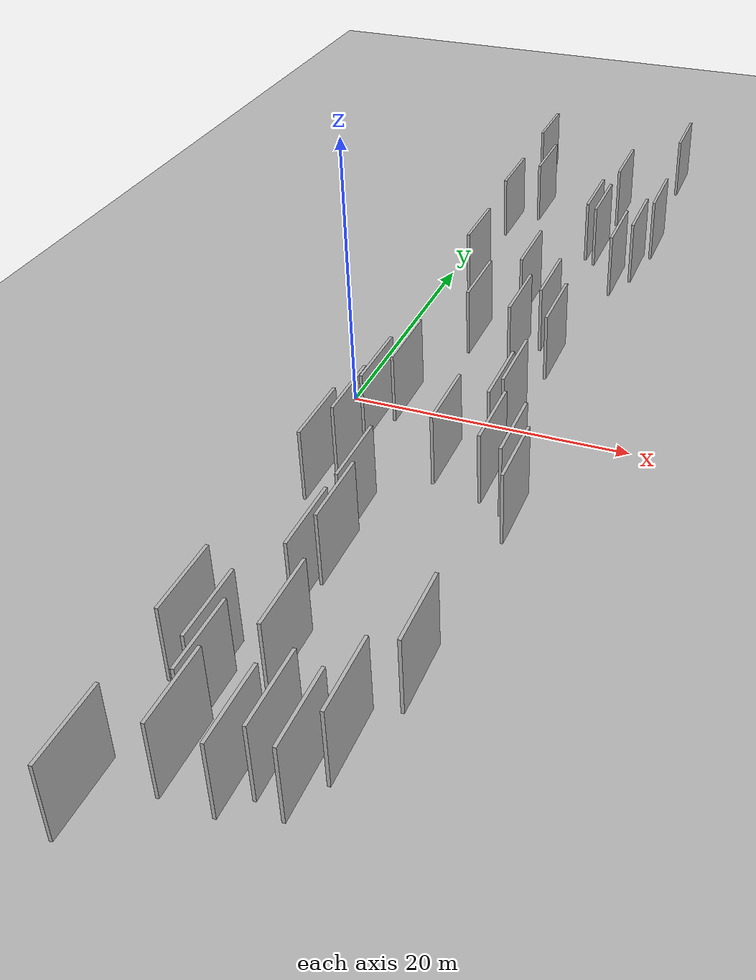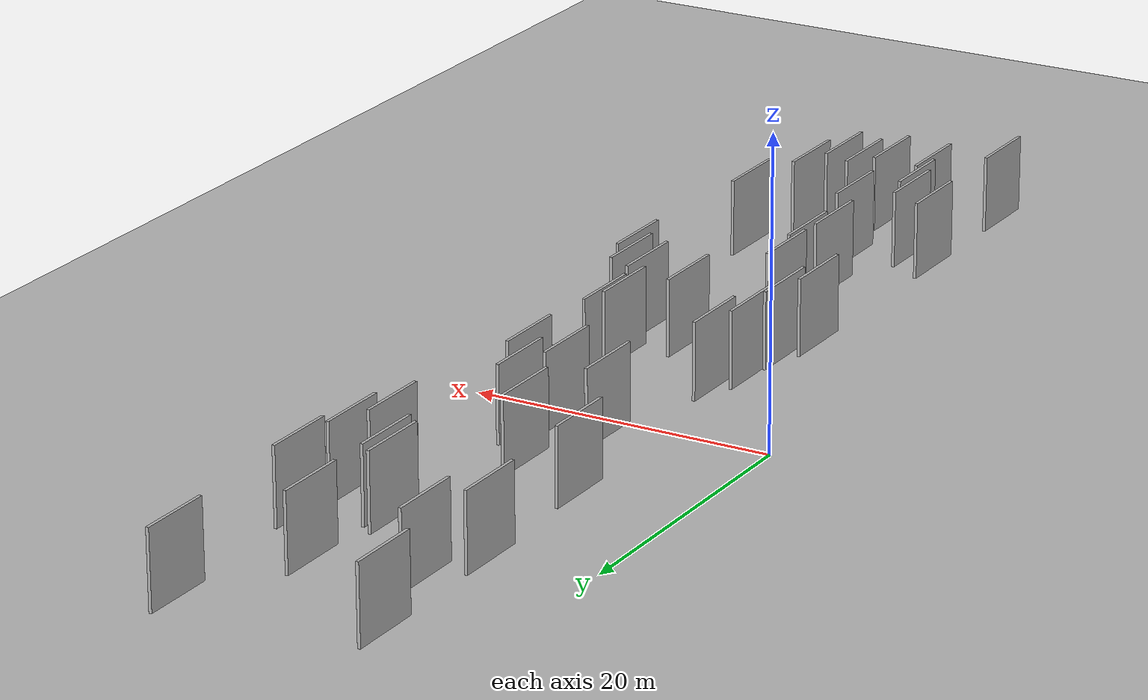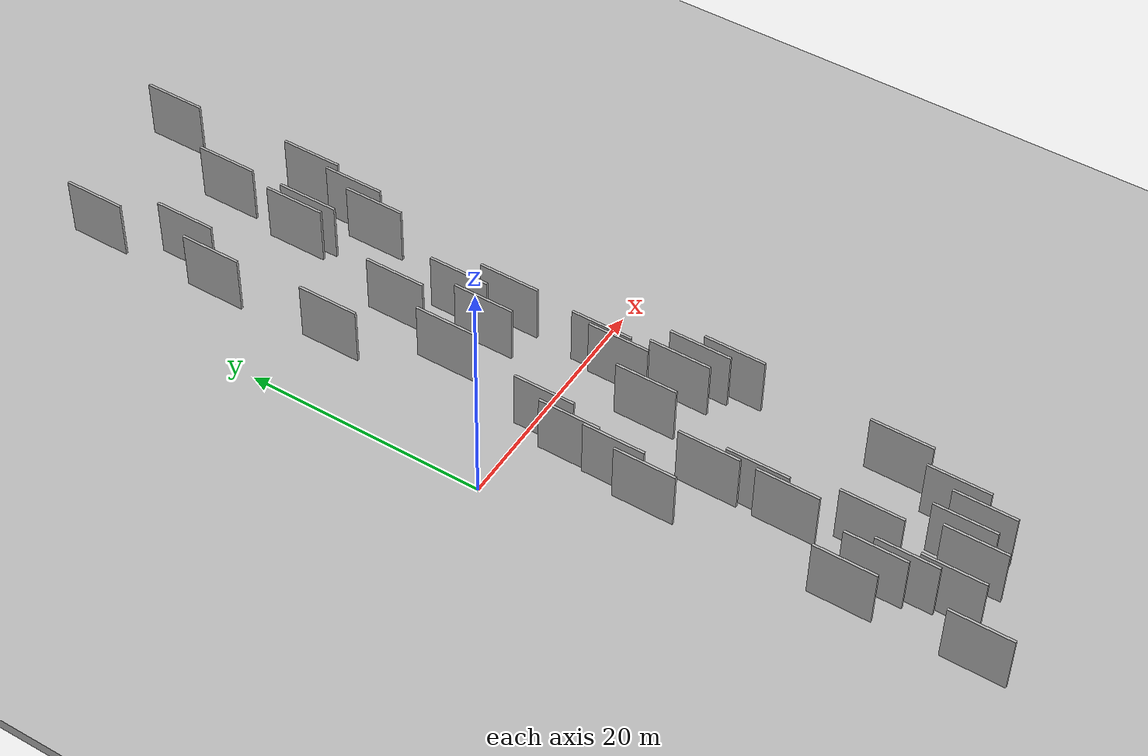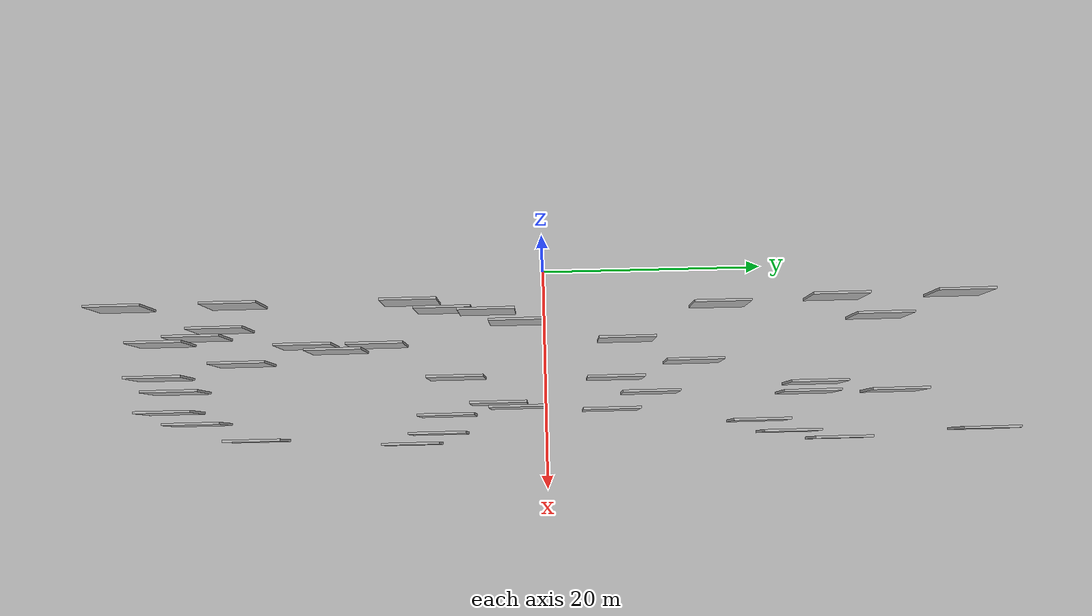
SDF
<?xml version="1.0" encoding="utf-8"?>

<sdf version="1.6">

   <world name="default">

      <gui fullscreen="0">

         <camera name="user_camera">

            <pose>-15 0 4.57585 0 0 0</pose>

            <view_controller>orbit</view_controller>

         </camera>

      </gui>

      <scene>

         <sky>

           <clouds>

             <speed>12</speed>

           </clouds>

         </sky>

         <ambient>0.4 0.4 0.4 1</ambient>

         <background>0.7 0.7 0.7 1</background>

         <shadows>1</shadows>

      </scene>

      <gravity>0 0 -9.8066</gravity>

      <magnetic_field>6e-06 2.3e-05 -4.2e-05</magnetic_field>

      <physics default="0" name="default_physics" type="ode">

         <ode>

            <solver>

               <type>quick</type>

               <iters>10</iters>

               <sor>1.0</sor>

               <use_dynamic_moi_rescaling>0</use_dynamic_moi_rescaling>

            </solver>

            <constraints>

               <cfm>0</cfm>

               <erp>0.2</erp>

               <contact_max_correcting_vel>100</contact_max_correcting_vel>

               <contact_surface_layer>0.001</contact_surface_layer>

            </constraints>

         </ode>

         <max_step_size>0.004</max_step_size>

         <real_time_factor>1</real_time_factor>

         <real_time_update_rate>250</real_time_update_rate>

      </physics>

      <light name="sun" type="directional">

         <cast_shadows>1</cast_shadows>

         <pose>0 0 10 0 0 0</pose>

         <diffuse>0.8 0.8 0.8 1</diffuse>

         <specular>0.2 0.2 0.2 1</specular>

         <attenuation>

            <range>1000</range>

            <constant>0.9</constant>

            <linear>0.01</linear>

            <quadratic>0.001</quadratic>

         </attenuation>

         <direction>-0.5 0.1 -0.9</direction>

      </light>

      <include>

         <name>ground_plane_1</name>

         <uri>model://HANNAS_ground_plane</uri>

         <pose>0 0 0  0 0 0</pose>

      </include>

      <include>

         <name>ground_plane_2</name>

         <uri>model://HANNAS_ground_plane</uri>

         <pose>100 0 0  0 0 0</pose>

      </include>

      <model name="HANNAS_wall_1">

         <static>1</static>

         <pose frame="">4.0611 -5.0417 2.5 0.000000 0.000000 1.570796</pose>

         <link name="link">

            <pose frame="">0 0 2.50 0 0 0</pose>

            <collision name="collision">

               <geometry>

                  <box>

                     <size>5.00 0.2 5.00</size>

                  </box>

               </geometry>

               <max_contacts>10</max_contacts>

               <surface>

                  <contact>

                     <ode/>

                  </contact>

                  <bounce/>

                  <friction>

                     <torsional>

                        <ode/>

                     </torsional>

                     <ode/>

                  </friction>

               </surface>

            </collision>

            <visual name="visual">

               <cast_shadows>0</cast_shadows>

               <geometry>

                  <box>

                     <size>5.00 0.2 5.00</size>

                  </box>

               </geometry>

               <material>

                  <script>

                     <uri>model://HANNAS_wall/materials/scripts</uri>

                     <uri>model://HANNAS_wall/materials/textures</uri>

                     <name>vrc/HANNAS_wall</name>

                  </script>

               </material>

            </visual>

            <self_collide>0</self_collide>

            <enable_wind>0</enable_wind>

            <kinematic>0</kinematic>

         </link>

      </model>

      <model name="HANNAS_wall_2">

         <static>1</static>

         <pose frame="">6.8027 -21.0316 2.5 0.000000 0.000000 1.570796</pose>

         <link name="link">

            <pose frame="">0 0 2.50 0 0 0</pose>

            <collision name="collision">

               <geometry>

                  <box>

                     <size>5.00 0.2 5.00</size>

                  </box>

               </geometry>

               <max_contacts>10</max_contacts>

               <surface>

                  <contact>

                     <ode/>

                  </contact>

                  <bounce/>

                  <friction>

                     <torsional>

                        <ode/>

                     </torsional>

                     <ode/>

                  </friction>

               </surface>

            </collision>

            <visual name="visual">

               <cast_shadows>0</cast_shadows>

               <geometry>

                  <box>

                     <size>5.00 0.2 5.00</size>

                  </box>

               </geometry>

               <material>

                  <script>

                     <uri>model://HANNAS_wall/materials/scripts</uri>

                     <uri>model://HANNAS_wall/materials/textures</uri>

                     <name>vrc/HANNAS_wall</name>

                  </script>

               </material>

            </visual>

            <self_collide>0</self_collide>

            <enable_wind>0</enable_wind>

            <kinematic>0</kinematic>

         </link>

      </model>

      <model name="HANNAS_wall_3">

         <static>1</static>

         <pose frame="">5.0517 -2.3340 2.5 0.000000 0.000000 1.570796</pose>

         <link name="link">

            <pose frame="">0 0 2.50 0 0 0</pose>

            <collision name="collision">

               <geometry>

                  <box>

                     <size>5.00 0.2 5.00</size>

                  </box>

               </geometry>

               <max_contacts>10</max_contacts>

               <surface>

                  <contact>

                     <ode/>

                  </contact>

                  <bounce/>

                  <friction>

                     <torsional>

                        <ode/>

                     </torsional>

                     <ode/>

                  </friction>

               </surface>

            </collision>

            <visual name="visual">

               <cast_shadows>0</cast_shadows>

               <geometry>

                  <box>

                     <size>5.00 0.2 5.00</size>

                  </box>

               </geometry>

               <material>

                  <script>

                     <uri>model://HANNAS_wall/materials/scripts</uri>

                     <uri>model://HANNAS_wall/materials/textures</uri>

                     <name>vrc/HANNAS_wall</name>

                  </script>

               </material>

            </visual>

            <self_collide>0</self_collide>

            <enable_wind>0</enable_wind>

            <kinematic>0</kinematic>

         </link>

      </model>

      <model name="HANNAS_wall_4">

         <static>1</static>

         <pose frame="">13.2002 -8.6880 2.5 0.000000 0.000000 1.570796</pose>

         <link name="link">

            <pose frame="">0 0 2.50 0 0 0</pose>

            <collision name="collision">

               <geometry>

                  <box>

                     <size>5.00 0.2 5.00</size>

                  </box>

               </geometry>

               <max_contacts>10</max_contacts>

               <surface>

                  <contact>

                     <ode/>

                  </contact>

                  <bounce/>

                  <friction>

                     <torsional>

                        <ode/>

                     </torsional>

                     <ode/>

                  </friction>

               </surface>

            </collision>

            <visual name="visual">

               <cast_shadows>0</cast_shadows>

               <geometry>

                  <box>

                     <size>5.00 0.2 5.00</size>

                  </box>

               </geometry>

               <material>

                  <script>

                     <uri>model://HANNAS_wall/materials/scripts</uri>

                     <uri>model://HANNAS_wall/materials/textures</uri>

                     <name>vrc/HANNAS_wall</name>

                  </script>

               </material>

            </visual>

            <self_collide>0</self_collide>

            <enable_wind>0</enable_wind>

            <kinematic>0</kinematic>

         </link>

      </model>

      <model name="HANNAS_wall_5">

         <static>1</static>

         <pose frame="">5.1842 -28.6726 2.5 0.000000 0.000000 1.570796</pose>

         <link name="link">

            <pose frame="">0 0 2.50 0 0 0</pose>

            <collision name="collision">

               <geometry>

                  <box>

                     <size>5.00 0.2 5.00</size>

                  </box>

               </geometry>

               <max_contacts>10</max_contacts>

               <surface>

                  <contact>

                     <ode/>

                  </contact>

                  <bounce/>

                  <friction>

                     <torsional>

                        <ode/>

                     </torsional>

                     <ode/>

                  </friction>

               </surface>

            </collision>

            <visual name="visual">

               <cast_shadows>0</cast_shadows>

               <geometry>

                  <box>

                     <size>5.00 0.2 5.00</size>

                  </box>

               </geometry>

               <material>

                  <script>

                     <uri>model://HANNAS_wall/materials/scripts</uri>

                     <uri>model://HANNAS_wall/materials/textures</uri>

                     <name>vrc/HANNAS_wall</name>

                  </script>

               </material>

            </visual>

            <self_collide>0</self_collide>

            <enable_wind>0</enable_wind>

            <kinematic>0</kinematic>

         </link>

      </model>

      <model name="HANNAS_wall_6">

         <static>1</static>

         <pose frame="">15.6632 -11.8066 2.5 0.000000 0.000000 1.570796</pose>

         <link name="link">

            <pose frame="">0 0 2.50 0 0 0</pose>

            <collision name="collision">

               <geometry>

                  <box>

                     <size>5.00 0.2 5.00</size>

                  </box>

               </geometry>

               <max_contacts>10</max_contacts>

               <surface>

                  <contact>

                     <ode/>

                  </contact>

                  <bounce/>

                  <friction>

                     <torsional>

                        <ode/>

                     </torsional>

                     <ode/>

                  </friction>

               </surface>

            </collision>

            <visual name="visual">

               <cast_shadows>0</cast_shadows>

               <geometry>

                  <box>

                     <size>5.00 0.2 5.00</size>

                  </box>

               </geometry>

               <material>

                  <script>

                     <uri>model://HANNAS_wall/materials/scripts</uri>

                     <uri>model://HANNAS_wall/materials/textures</uri>

                     <name>vrc/HANNAS_wall</name>

                  </script>

               </material>

            </visual>

            <self_collide>0</self_collide>

            <enable_wind>0</enable_wind>

            <kinematic>0</kinematic>

         </link>

      </model>

      <model name="HANNAS_wall_7">

         <static>1</static>

         <pose frame="">5.2325 29.7502 2.5 0.000000 0.000000 1.570796</pose>

         <link name="link">

            <pose frame="">0 0 2.50 0 0 0</pose>

            <collision name="collision">

               <geometry>

                  <box>

                     <size>5.00 0.2 5.00</size>

                  </box>

               </geometry>

               <max_contacts>10</max_contacts>

               <surface>

                  <contact>

                     <ode/>

                  </contact>

                  <bounce/>

                  <friction>

                     <torsional>

                        <ode/>

                     </torsional>

                     <ode/>

                  </friction>

               </surface>

            </collision>

            <visual name="visual">

               <cast_shadows>0</cast_shadows>

               <geometry>

                  <box>

                     <size>5.00 0.2 5.00</size>

                  </box>

               </geometry>

               <material>

                  <script>

                     <uri>model://HANNAS_wall/materials/scripts</uri>

                     <uri>model://HANNAS_wall/materials/textures</uri>

                     <name>vrc/HANNAS_wall</name>

                  </script>

               </material>

            </visual>

            <self_collide>0</self_collide>

            <enable_wind>0</enable_wind>

            <kinematic>0</kinematic>

         </link>

      </model>

      <model name="HANNAS_wall_8">

         <static>1</static>

         <pose frame="">14.2520 18.7324 2.5 0.000000 0.000000 1.570796</pose>

         <link name="link">

            <pose frame="">0 0 2.50 0 0 0</pose>

            <collision name="collision">

               <geometry>

                  <box>

                     <size>5.00 0.2 5.00</size>

                  </box>

               </geometry>

               <max_contacts>10</max_contacts>

               <surface>

                  <contact>

                     <ode/>

                  </contact>

                  <bounce/>

                  <friction>

                     <torsional>

                        <ode/>

                     </torsional>

                     <ode/>

                  </friction>

               </surface>

            </collision>

            <visual name="visual">

               <cast_shadows>0</cast_shadows>

               <geometry>

                  <box>

                     <size>5.00 0.2 5.00</size>

                  </box>

               </geometry>

               <material>

                  <script>

                     <uri>model://HANNAS_wall/materials/scripts</uri>

                     <uri>model://HANNAS_wall/materials/textures</uri>

                     <name>vrc/HANNAS_wall</name>

                  </script>

               </material>

            </visual>

            <self_collide>0</self_collide>

            <enable_wind>0</enable_wind>

            <kinematic>0</kinematic>

         </link>

      </model>

      <model name="HANNAS_wall_9">

         <static>1</static>

         <pose frame="">9.8904 -7.8526 2.5 0.000000 0.000000 1.570796</pose>

         <link name="link">

            <pose frame="">0 0 2.50 0 0 0</pose>

            <collision name="collision">

               <geometry>

                  <box>

                     <size>5.00 0.2 5.00</size>

                  </box>

               </geometry>

               <max_contacts>10</max_contacts>

               <surface>

                  <contact>

                     <ode/>

                  </contact>

                  <bounce/>

                  <friction>

                     <torsional>

                        <ode/>

                     </torsional>

                     <ode/>

                  </friction>

               </surface>

            </collision>

            <visual name="visual">

               <cast_shadows>0</cast_shadows>

               <geometry>

                  <box>

                     <size>5.00 0.2 5.00</size>

                  </box>

               </geometry>

               <material>

                  <script>

                     <uri>model://HANNAS_wall/materials/scripts</uri>

                     <uri>model://HANNAS_wall/materials/textures</uri>

                     <name>vrc/HANNAS_wall</name>

                  </script>

               </material>

            </visual>

            <self_collide>0</self_collide>

            <enable_wind>0</enable_wind>

            <kinematic>0</kinematic>

         </link>

      </model>

      <model name="HANNAS_wall_10">

         <static>1</static>

         <pose frame="">15.0764 -25.5331 2.5 0.000000 0.000000 1.570796</pose>

         <link name="link">

            <pose frame="">0 0 2.50 0 0 0</pose>

            <collision name="collision">

               <geometry>

                  <box>

                     <size>5.00 0.2 5.00</size>

                  </box>

               </geometry>

               <max_contacts>10</max_contacts>

               <surface>

                  <contact>

                     <ode/>

                  </contact>

                  <bounce/>

                  <friction>

                     <torsional>

                        <ode/>

                     </torsional>

                     <ode/>

                  </friction>

               </surface>

            </collision>

            <visual name="visual">

               <cast_shadows>0</cast_shadows>

               <geometry>

                  <box>

                     <size>5.00 0.2 5.00</size>

                  </box>

               </geometry>

               <material>

                  <script>

                     <uri>model://HANNAS_wall/materials/scripts</uri>

                     <uri>model://HANNAS_wall/materials/textures</uri>

                     <name>vrc/HANNAS_wall</name>

                  </script>

               </material>

            </visual>

            <self_collide>0</self_collide>

            <enable_wind>0</enable_wind>

            <kinematic>0</kinematic>

         </link>

      </model>

      <model name="HANNAS_wall_11">

         <static>1</static>

         <pose frame="">15.9579 25.7629 2.5 0.000000 0.000000 1.570796</pose>

         <link name="link">

            <pose frame="">0 0 2.50 0 0 0</pose>

            <collision name="collision">

               <geometry>

                  <box>

                     <size>5.00 0.2 5.00</size>

                  </box>

               </geometry>

               <max_contacts>10</max_contacts>

               <surface>

                  <contact>

                     <ode/>

                  </contact>

                  <bounce/>

                  <friction>

                     <torsional>

                        <ode/>

                     </torsional>

                     <ode/>

                  </friction>

               </surface>

            </collision>

            <visual name="visual">

               <cast_shadows>0</cast_shadows>

               <geometry>

                  <box>

                     <size>5.00 0.2 5.00</size>

                  </box>

               </geometry>

               <material>

                  <script>

                     <uri>model://HANNAS_wall/materials/scripts</uri>

                     <uri>model://HANNAS_wall/materials/textures</uri>

                     <name>vrc/HANNAS_wall</name>

                  </script>

               </material>

            </visual>

            <self_collide>0</self_collide>

            <enable_wind>0</enable_wind>

            <kinematic>0</kinematic>

         </link>

      </model>

      <model name="HANNAS_wall_12">

         <static>1</static>

         <pose frame="">12.6121 -2.4671 2.5 0.000000 0.000000 1.570796</pose>

         <link name="link">

            <pose frame="">0 0 2.50 0 0 0</pose>

            <collision name="collision">

               <geometry>

                  <box>

                     <size>5.00 0.2 5.00</size>

                  </box>

               </geometry>

               <max_contacts>10</max_contacts>

               <surface>

                  <contact>

                     <ode/>

                  </contact>

                  <bounce/>

                  <friction>

                     <torsional>

                        <ode/>

                     </torsional>

                     <ode/>

                  </friction>

               </surface>

            </collision>

            <visual name="visual">

               <cast_shadows>0</cast_shadows>

               <geometry>

                  <box>

                     <size>5.00 0.2 5.00</size>

                  </box>

               </geometry>

               <material>

                  <script>

                     <uri>model://HANNAS_wall/materials/scripts</uri>

                     <uri>model://HANNAS_wall/materials/textures</uri>

                     <name>vrc/HANNAS_wall</name>

                  </script>

               </material>

            </visual>

            <self_collide>0</self_collide>

            <enable_wind>0</enable_wind>

            <kinematic>0</kinematic>

         </link>

      </model>

      <model name="HANNAS_wall_13">

         <static>1</static>

         <pose frame="">15.4311 38.5887 2.5 0.000000 0.000000 1.570796</pose>

         <link name="link">

            <pose frame="">0 0 2.50 0 0 0</pose>

            <collision name="collision">

               <geometry>

                  <box>

                     <size>5.00 0.2 5.00</size>

                  </box>

               </geometry>

               <max_contacts>10</max_contacts>

               <surface>

                  <contact>

                     <ode/>

                  </contact>

                  <bounce/>

                  <friction>

                     <torsional>

                        <ode/>

                     </torsional>

                     <ode/>

                  </friction>

               </surface>

            </collision>

            <visual name="visual">

               <cast_shadows>0</cast_shadows>

               <geometry>

                  <box>

                     <size>5.00 0.2 5.00</size>

                  </box>

               </geometry>

               <material>

                  <script>

                     <uri>model://HANNAS_wall/materials/scripts</uri>

                     <uri>model://HANNAS_wall/materials/textures</uri>

                     <name>vrc/HANNAS_wall</name>

                  </script>

               </material>

            </visual>

            <self_collide>0</self_collide>

            <enable_wind>0</enable_wind>

            <kinematic>0</kinematic>

         </link>

      </model>

      <model name="HANNAS_wall_14">

         <static>1</static>

         <pose frame="">3.4527 25.9818 2.5 0.000000 0.000000 1.570796</pose>

         <link name="link">

            <pose frame="">0 0 2.50 0 0 0</pose>

            <collision name="collision">

               <geometry>

                  <box>

                     <size>5.00 0.2 5.00</size>

                  </box>

               </geometry>

               <max_contacts>10</max_contacts>

               <surface>

                  <contact>

                     <ode/>

                  </contact>

                  <bounce/>

                  <friction>

                     <torsional>

                        <ode/>

                     </torsional>

                     <ode/>

                  </friction>

               </surface>

            </collision>

            <visual name="visual">

               <cast_shadows>0</cast_shadows>

               <geometry>

                  <box>

                     <size>5.00 0.2 5.00</size>

                  </box>

               </geometry>

               <material>

                  <script>

                     <uri>model://HANNAS_wall/materials/scripts</uri>

                     <uri>model://HANNAS_wall/materials/textures</uri>

                     <name>vrc/HANNAS_wall</name>

                  </script>

               </material>

            </visual>

            <self_collide>0</self_collide>

            <enable_wind>0</enable_wind>

            <kinematic>0</kinematic>

         </link>

      </model>

      <model name="HANNAS_wall_15">

         <static>1</static>

         <pose frame="">12.2305 -4.1377 2.5 0.000000 0.000000 1.570796</pose>

         <link name="link">

            <pose frame="">0 0 2.50 0 0 0</pose>

            <collision name="collision">

               <geometry>

                  <box>

                     <size>5.00 0.2 5.00</size>

                  </box>

               </geometry>

               <max_contacts>10</max_contacts>

               <surface>

                  <contact>

                     <ode/>

                  </contact>

                  <bounce/>

                  <friction>

                     <torsional>

                        <ode/>

                     </torsional>

                     <ode/>

                  </friction>

               </surface>

            </collision>

            <visual name="visual">

               <cast_shadows>0</cast_shadows>

               <geometry>

                  <box>

                     <size>5.00 0.2 5.00</size>

                  </box>

               </geometry>

               <material>

                  <script>

                     <uri>model://HANNAS_wall/materials/scripts</uri>

                     <uri>model://HANNAS_wall/materials/textures</uri>

                     <name>vrc/HANNAS_wall</name>

                  </script>

               </material>

            </visual>

            <self_collide>0</self_collide>

            <enable_wind>0</enable_wind>

            <kinematic>0</kinematic>

         </link>

      </model>

      <model name="HANNAS_wall_16">

         <static>1</static>

         <pose frame="">11.0321 23.8333 2.5 0.000000 0.000000 1.570796</pose>

         <link name="link">

            <pose frame="">0 0 2.50 0 0 0</pose>

            <collision name="collision">

               <geometry>

                  <box>

                     <size>5.00 0.2 5.00</size>

                  </box>

               </geometry>

               <max_contacts>10</max_contacts>

               <surface>

                  <contact>

                     <ode/>

                  </contact>

                  <bounce/>

                  <friction>

                     <torsional>

                        <ode/>

                     </torsional>

                     <ode/>

                  </friction>

               </surface>

            </collision>

            <visual name="visual">

               <cast_shadows>0</cast_shadows>

               <geometry>

                  <box>

                     <size>5.00 0.2 5.00</size>

                  </box>

               </geometry>

               <material>

                  <script>

                     <uri>model://HANNAS_wall/materials/scripts</uri>

                     <uri>model://HANNAS_wall/materials/textures</uri>

                     <name>vrc/HANNAS_wall</name>

                  </script>

               </material>

            </visual>

            <self_collide>0</self_collide>

            <enable_wind>0</enable_wind>

            <kinematic>0</kinematic>

         </link>

      </model>

      <model name="HANNAS_wall_17">

         <static>1</static>

         <pose frame="">11.8586 23.1763 2.5 0.000000 0.000000 1.570796</pose>

         <link name="link">

            <pose frame="">0 0 2.50 0 0 0</pose>

            <collision name="collision">

               <geometry>

                  <box>

                     <size>5.00 0.2 5.00</size>

                  </box>

               </geometry>

               <max_contacts>10</max_contacts>

               <surface>

                  <contact>

                     <ode/>

                  </contact>

                  <bounce/>

                  <friction>

                     <torsional>

                        <ode/>

                     </torsional>

                     <ode/>

                  </friction>

               </surface>

            </collision>

            <visual name="visual">

               <cast_shadows>0</cast_shadows>

               <geometry>

                  <box>

                     <size>5.00 0.2 5.00</size>

                  </box>

               </geometry>

               <material>

                  <script>

                     <uri>model://HANNAS_wall/materials/scripts</uri>

                     <uri>model://HANNAS_wall/materials/textures</uri>

                     <name>vrc/HANNAS_wall</name>

                  </script>

               </material>

            </visual>

            <self_collide>0</self_collide>

            <enable_wind>0</enable_wind>

            <kinematic>0</kinematic>

         </link>

      </model>

      <model name="HANNAS_wall_18">

         <static>1</static>

         <pose frame="">3.8338 -8.8476 2.5 0.000000 0.000000 1.570796</pose>

         <link name="link">

            <pose frame="">0 0 2.50 0 0 0</pose>

            <collision name="collision">

               <geometry>

                  <box>

                     <size>5.00 0.2 5.00</size>

                  </box>

               </geometry>

               <max_contacts>10</max_contacts>

               <surface>

                  <contact>

                     <ode/>

                  </contact>

                  <bounce/>

                  <friction>

                     <torsional>

                        <ode/>

                     </torsional>

                     <ode/>

                  </friction>

               </surface>

            </collision>

            <visual name="visual">

               <cast_shadows>0</cast_shadows>

               <geometry>

                  <box>

                     <size>5.00 0.2 5.00</size>

                  </box>

               </geometry>

               <material>

                  <script>

                     <uri>model://HANNAS_wall/materials/scripts</uri>

                     <uri>model://HANNAS_wall/materials/textures</uri>

                     <name>vrc/HANNAS_wall</name>

                  </script>

               </material>

            </visual>

            <self_collide>0</self_collide>

            <enable_wind>0</enable_wind>

            <kinematic>0</kinematic>

         </link>

      </model>

      <model name="HANNAS_wall_19">

         <static>1</static>

         <pose frame="">8.8833 13.1258 2.5 0.000000 0.000000 1.570796</pose>

         <link name="link">

            <pose frame="">0 0 2.50 0 0 0</pose>

            <collision name="collision">

               <geometry>

                  <box>

                     <size>5.00 0.2 5.00</size>

                  </box>

               </geometry>

               <max_contacts>10</max_contacts>

               <surface>

                  <contact>

                     <ode/>

                  </contact>

                  <bounce/>

                  <friction>

                     <torsional>

                        <ode/>

                     </torsional>

                     <ode/>

                  </friction>

               </surface>

            </collision>

            <visual name="visual">

               <cast_shadows>0</cast_shadows>

               <geometry>

                  <box>

                     <size>5.00 0.2 5.00</size>

                  </box>

               </geometry>

               <material>

                  <script>

                     <uri>model://HANNAS_wall/materials/scripts</uri>

                     <uri>model://HANNAS_wall/materials/textures</uri>

                     <name>vrc/HANNAS_wall</name>

                  </script>

               </material>

            </visual>

            <self_collide>0</self_collide>

            <enable_wind>0</enable_wind>

            <kinematic>0</kinematic>

         </link>

      </model>

      <model name="HANNAS_wall_20">

         <static>1</static>

         <pose frame="">11.8826 30.8243 2.5 0.000000 0.000000 1.570796</pose>

         <link name="link">

            <pose frame="">0 0 2.50 0 0 0</pose>

            <collision name="collision">

               <geometry>

                  <box>

                     <size>5.00 0.2 5.00</size>

                  </box>

               </geometry>

               <max_contacts>10</max_contacts>

               <surface>

                  <contact>

                     <ode/>

                  </contact>

                  <bounce/>

                  <friction>

                     <torsional>

                        <ode/>

                     </torsional>

                     <ode/>

                  </friction>

               </surface>

            </collision>

            <visual name="visual">

               <cast_shadows>0</cast_shadows>

               <geometry>

                  <box>

                     <size>5.00 0.2 5.00</size>

                  </box>

               </geometry>

               <material>

                  <script>

                     <uri>model://HANNAS_wall/materials/scripts</uri>

                     <uri>model://HANNAS_wall/materials/textures</uri>

                     <name>vrc/HANNAS_wall</name>

                  </script>

               </material>

            </visual>

            <self_collide>0</self_collide>

            <enable_wind>0</enable_wind>

            <kinematic>0</kinematic>

         </link>

      </model>

      <model name="HANNAS_wall_21">

         <static>1</static>

         <pose frame="">11.5611 9.2279 2.5 0.000000 0.000000 1.570796</pose>

         <link name="link">

            <pose frame="">0 0 2.50 0 0 0</pose>

            <collision name="collision">

               <geometry>

                  <box>

                     <size>5.00 0.2 5.00</size>

                  </box>

               </geometry>

               <max_contacts>10</max_contacts>

               <surface>

                  <contact>

                     <ode/>

                  </contact>

                  <bounce/>

                  <friction>

                     <torsional>

                        <ode/>

                     </torsional>

                     <ode/>

                  </friction>

               </surface>

            </collision>

            <visual name="visual">

               <cast_shadows>0</cast_shadows>

               <geometry>

                  <box>

                     <size>5.00 0.2 5.00</size>

                  </box>

               </geometry>

               <material>

                  <script>

                     <uri>model://HANNAS_wall/materials/scripts</uri>

                     <uri>model://HANNAS_wall/materials/textures</uri>

                     <name>vrc/HANNAS_wall</name>

                  </script>

               </material>

            </visual>

            <self_collide>0</self_collide>

            <enable_wind>0</enable_wind>

            <kinematic>0</kinematic>

         </link>

      </model>

      <model name="HANNAS_wall_22">

         <static>1</static>

         <pose frame="">15.2803 21.3491 2.5 0.000000 0.000000 1.570796</pose>

         <link name="link">

            <pose frame="">0 0 2.50 0 0 0</pose>

            <collision name="collision">

               <geometry>

                  <box>

                     <size>5.00 0.2 5.00</size>

                  </box>

               </geometry>

               <max_contacts>10</max_contacts>

               <surface>

                  <contact>

                     <ode/>

                  </contact>

                  <bounce/>

                  <friction>

                     <torsional>

                        <ode/>

                     </torsional>

                     <ode/>

                  </friction>

               </surface>

            </collision>

            <visual name="visual">

               <cast_shadows>0</cast_shadows>

               <geometry>

                  <box>

                     <size>5.00 0.2 5.00</size>

                  </box>

               </geometry>

               <material>

                  <script>

                     <uri>model://HANNAS_wall/materials/scripts</uri>

                     <uri>model://HANNAS_wall/materials/textures</uri>

                     <name>vrc/HANNAS_wall</name>

                  </script>

               </material>

            </visual>

            <self_collide>0</self_collide>

            <enable_wind>0</enable_wind>

            <kinematic>0</kinematic>

         </link>

      </model>

      <model name="HANNAS_wall_23">

         <static>1</static>

         <pose frame="">13.5013 -30.7502 2.5 0.000000 0.000000 1.570796</pose>

         <link name="link">

            <pose frame="">0 0 2.50 0 0 0</pose>

            <collision name="collision">

               <geometry>

                  <box>

                     <size>5.00 0.2 5.00</size>

                  </box>

               </geometry>

               <max_contacts>10</max_contacts>

               <surface>

                  <contact>

                     <ode/>

                  </contact>

                  <bounce/>

                  <friction>

                     <torsional>

                        <ode/>

                     </torsional>

                     <ode/>

                  </friction>

               </surface>

            </collision>

            <visual name="visual">

               <cast_shadows>0</cast_shadows>

               <geometry>

                  <box>

                     <size>5.00 0.2 5.00</size>

                  </box>

               </geometry>

               <material>

                  <script>

                     <uri>model://HANNAS_wall/materials/scripts</uri>

                     <uri>model://HANNAS_wall/materials/textures</uri>

                     <name>vrc/HANNAS_wall</name>

                  </script>

               </material>

            </visual>

            <self_collide>0</self_collide>

            <enable_wind>0</enable_wind>

            <kinematic>0</kinematic>

         </link>

      </model>

      <model name="HANNAS_wall_24">

         <static>1</static>

         <pose frame="">5.8573 -30.6992 2.5 0.000000 0.000000 1.570796</pose>

         <link name="link">

            <pose frame="">0 0 2.50 0 0 0</pose>

            <collision name="collision">

               <geometry>

                  <box>

                     <size>5.00 0.2 5.00</size>

                  </box>

               </geometry>

               <max_contacts>10</max_contacts>

               <surface>

                  <contact>

                     <ode/>

                  </contact>

                  <bounce/>

                  <friction>

                     <torsional>

                        <ode/>

                     </torsional>

                     <ode/>

                  </friction>

               </surface>

            </collision>

            <visual name="visual">

               <cast_shadows>0</cast_shadows>

               <geometry>

                  <box>

                     <size>5.00 0.2 5.00</size>

                  </box>

               </geometry>

               <material>

                  <script>

                     <uri>model://HANNAS_wall/materials/scripts</uri>

                     <uri>model://HANNAS_wall/materials/textures</uri>

                     <name>vrc/HANNAS_wall</name>

                  </script>

               </material>

            </visual>

            <self_collide>0</self_collide>

            <enable_wind>0</enable_wind>

            <kinematic>0</kinematic>

         </link>

      </model>

      <model name="HANNAS_wall_25">

         <static>1</static>

         <pose frame="">14.7804 -9.4741 2.5 0.000000 0.000000 1.570796</pose>

         <link name="link">

            <pose frame="">0 0 2.50 0 0 0</pose>

            <collision name="collision">

               <geometry>

                  <box>

                     <size>5.00 0.2 5.00</size>

                  </box>

               </geometry>

               <max_contacts>10</max_contacts>

               <surface>

                  <contact>

                     <ode/>

                  </contact>

                  <bounce/>

                  <friction>

                     <torsional>

                        <ode/>

                     </torsional>

                     <ode/>

                  </friction>

               </surface>

            </collision>

            <visual name="visual">

               <cast_shadows>0</cast_shadows>

               <geometry>

                  <box>

                     <size>5.00 0.2 5.00</size>

                  </box>

               </geometry>

               <material>

                  <script>

                     <uri>model://HANNAS_wall/materials/scripts</uri>

                     <uri>model://HANNAS_wall/materials/textures</uri>

                     <name>vrc/HANNAS_wall</name>

                  </script>

               </material>

            </visual>

            <self_collide>0</self_collide>

            <enable_wind>0</enable_wind>

            <kinematic>0</kinematic>

         </link>

      </model>

      <model name="HANNAS_wall_26">

         <static>1</static>

         <pose frame="">9.3566 -34.0890 2.5 0.000000 0.000000 1.570796</pose>

         <link name="link">

            <pose frame="">0 0 2.50 0 0 0</pose>

            <collision name="collision">

               <geometry>

                  <box>

                     <size>5.00 0.2 5.00</size>

                  </box>

               </geometry>

               <max_contacts>10</max_contacts>

               <surface>

                  <contact>

                     <ode/>

                  </contact>

                  <bounce/>

                  <friction>

                     <torsional>

                        <ode/>

                     </torsional>

                     <ode/>

                  </friction>

               </surface>

            </collision>

            <visual name="visual">

               <cast_shadows>0</cast_shadows>

               <geometry>

                  <box>

                     <size>5.00 0.2 5.00</size>

                  </box>

               </geometry>

               <material>

                  <script>

                     <uri>model://HANNAS_wall/materials/scripts</uri>

                     <uri>model://HANNAS_wall/materials/textures</uri>

                     <name>vrc/HANNAS_wall</name>

                  </script>

               </material>

            </visual>

            <self_collide>0</self_collide>

            <enable_wind>0</enable_wind>

            <kinematic>0</kinematic>

         </link>

      </model>

      <model name="HANNAS_wall_27">

         <static>1</static>

         <pose frame="">3.3523 36.8892 2.5 0.000000 0.000000 1.570796</pose>

         <link name="link">

            <pose frame="">0 0 2.50 0 0 0</pose>

            <collision name="collision">

               <geometry>

                  <box>

                     <size>5.00 0.2 5.00</size>

                  </box>

               </geometry>

               <max_contacts>10</max_contacts>

               <surface>

                  <contact>

                     <ode/>

                  </contact>

                  <bounce/>

                  <friction>

                     <torsional>

                        <ode/>

                     </torsional>

                     <ode/>

                  </friction>

               </surface>

            </collision>

            <visual name="visual">

               <cast_shadows>0</cast_shadows>

               <geometry>

                  <box>

                     <size>5.00 0.2 5.00</size>

                  </box>

               </geometry>

               <material>

                  <script>

                     <uri>model://HANNAS_wall/materials/scripts</uri>

                     <uri>model://HANNAS_wall/materials/textures</uri>

                     <name>vrc/HANNAS_wall</name>

                  </script>

               </material>

            </visual>

            <self_collide>0</self_collide>

            <enable_wind>0</enable_wind>

            <kinematic>0</kinematic>

         </link>

      </model>

      <model name="HANNAS_wall_28">

         <static>1</static>

         <pose frame="">6.3147 -33.9557 2.5 0.000000 0.000000 1.570796</pose>

         <link name="link">

            <pose frame="">0 0 2.50 0 0 0</pose>

            <collision name="collision">

               <geometry>

                  <box>

                     <size>5.00 0.2 5.00</size>

                  </box>

               </geometry>

               <max_contacts>10</max_contacts>

               <surface>

                  <contact>

                     <ode/>

                  </contact>

                  <bounce/>

                  <friction>

                     <torsional>

                        <ode/>

                     </torsional>

                     <ode/>

                  </friction>

               </surface>

            </collision>

            <visual name="visual">

               <cast_shadows>0</cast_shadows>

               <geometry>

                  <box>

                     <size>5.00 0.2 5.00</size>

                  </box>

               </geometry>

               <material>

                  <script>

                     <uri>model://HANNAS_wall/materials/scripts</uri>

                     <uri>model://HANNAS_wall/materials/textures</uri>

                     <name>vrc/HANNAS_wall</name>

                  </script>

               </material>

            </visual>

            <self_collide>0</self_collide>

            <enable_wind>0</enable_wind>

            <kinematic>0</kinematic>

         </link>

      </model>

      <model name="HANNAS_wall_29">

         <static>1</static>

         <pose frame="">12.4158 -33.2538 2.5 0.000000 0.000000 1.570796</pose>

         <link name="link">

            <pose frame="">0 0 2.50 0 0 0</pose>

            <collision name="collision">

               <geometry>

                  <box>

                     <size>5.00 0.2 5.00</size>

                  </box>

               </geometry>

               <max_contacts>10</max_contacts>

               <surface>

                  <contact>

                     <ode/>

                  </contact>

                  <bounce/>

                  <friction>

                     <torsional>

                        <ode/>

                     </torsional>

                     <ode/>

                  </friction>

               </surface>

            </collision>

            <visual name="visual">

               <cast_shadows>0</cast_shadows>

               <geometry>

                  <box>

                     <size>5.00 0.2 5.00</size>

                  </box>

               </geometry>

               <material>

                  <script>

                     <uri>model://HANNAS_wall/materials/scripts</uri>

                     <uri>model://HANNAS_wall/materials/textures</uri>

                     <name>vrc/HANNAS_wall</name>

                  </script>

               </material>

            </visual>

            <self_collide>0</self_collide>

            <enable_wind>0</enable_wind>

            <kinematic>0</kinematic>

         </link>

      </model>

      <model name="HANNAS_wall_30">

         <static>1</static>

         <pose frame="">3.8703 15.6135 2.5 0.000000 0.000000 1.570796</pose>

         <link name="link">

            <pose frame="">0 0 2.50 0 0 0</pose>

            <collision name="collision">

               <geometry>

                  <box>

                     <size>5.00 0.2 5.00</size>

                  </box>

               </geometry>

               <max_contacts>10</max_contacts>

               <surface>

                  <contact>

                     <ode/>

                  </contact>

                  <bounce/>

                  <friction>

                     <torsional>

                        <ode/>

                     </torsional>

                     <ode/>

                  </friction>

               </surface>

            </collision>

            <visual name="visual">

               <cast_shadows>0</cast_shadows>

               <geometry>

                  <box>

                     <size>5.00 0.2 5.00</size>

                  </box>

               </geometry>

               <material>

                  <script>

                     <uri>model://HANNAS_wall/materials/scripts</uri>

                     <uri>model://HANNAS_wall/materials/textures</uri>

                     <name>vrc/HANNAS_wall</name>

                  </script>

               </material>

            </visual>

            <self_collide>0</self_collide>

            <enable_wind>0</enable_wind>

            <kinematic>0</kinematic>

         </link>

      </model>

      <model name="HANNAS_wall_31">

         <static>1</static>

         <pose frame="">3.0288 -27.4514 2.5 0.000000 0.000000 1.570796</pose>

         <link name="link">

            <pose frame="">0 0 2.50 0 0 0</pose>

            <collision name="collision">

               <geometry>

                  <box>

                     <size>5.00 0.2 5.00</size>

                  </box>

               </geometry>

               <max_contacts>10</max_contacts>

               <surface>

                  <contact>

                     <ode/>

                  </contact>

                  <bounce/>

                  <friction>

                     <torsional>

                        <ode/>

                     </torsional>

                     <ode/>

                  </friction>

               </surface>

            </collision>

            <visual name="visual">

               <cast_shadows>0</cast_shadows>

               <geometry>

                  <box>

                     <size>5.00 0.2 5.00</size>

                  </box>

               </geometry>

               <material>

                  <script>

                     <uri>model://HANNAS_wall/materials/scripts</uri>

                     <uri>model://HANNAS_wall/materials/textures</uri>

                     <name>vrc/HANNAS_wall</name>

                  </script>

               </material>

            </visual>

            <self_collide>0</self_collide>

            <enable_wind>0</enable_wind>

            <kinematic>0</kinematic>

         </link>

      </model>

      <model name="HANNAS_wall_32">

         <static>1</static>

         <pose frame="">6.8437 -14.7817 2.5 0.000000 0.000000 1.570796</pose>

         <link name="link">

            <pose frame="">0 0 2.50 0 0 0</pose>

            <collision name="collision">

               <geometry>

                  <box>

                     <size>5.00 0.2 5.00</size>

                  </box>

               </geometry>

               <max_contacts>10</max_contacts>

               <surface>

                  <contact>

                     <ode/>

                  </contact>

                  <bounce/>

                  <friction>

                     <torsional>

                        <ode/>

                     </torsional>

                     <ode/>

                  </friction>

               </surface>

            </collision>

            <visual name="visual">

               <cast_shadows>0</cast_shadows>

               <geometry>

                  <box>

                     <size>5.00 0.2 5.00</size>

                  </box>

               </geometry>

               <material>

                  <script>

                     <uri>model://HANNAS_wall/materials/scripts</uri>

                     <uri>model://HANNAS_wall/materials/textures</uri>

                     <name>vrc/HANNAS_wall</name>

                  </script>

               </material>

            </visual>

            <self_collide>0</self_collide>

            <enable_wind>0</enable_wind>

            <kinematic>0</kinematic>

         </link>

      </model>

      <model name="HANNAS_wall_33">

         <static>1</static>

         <pose frame="">12.9965 5.7429 2.5 0.000000 0.000000 1.570796</pose>

         <link name="link">

            <pose frame="">0 0 2.50 0 0 0</pose>

            <collision name="collision">

               <geometry>

                  <box>

                     <size>5.00 0.2 5.00</size>

                  </box>

               </geometry>

               <max_contacts>10</max_contacts>

               <surface>

                  <contact>

                     <ode/>

                  </contact>

                  <bounce/>

                  <friction>

                     <torsional>

                        <ode/>

                     </torsional>

                     <ode/>

                  </friction>

               </surface>

            </collision>

            <visual name="visual">

               <cast_shadows>0</cast_shadows>

               <geometry>

                  <box>

                     <size>5.00 0.2 5.00</size>

                  </box>

               </geometry>

               <material>

                  <script>

                     <uri>model://HANNAS_wall/materials/scripts</uri>

                     <uri>model://HANNAS_wall/materials/textures</uri>

                     <name>vrc/HANNAS_wall</name>

                  </script>

               </material>

            </visual>

            <self_collide>0</self_collide>

            <enable_wind>0</enable_wind>

            <kinematic>0</kinematic>

         </link>

      </model>

      <model name="HANNAS_wall_34">

         <static>1</static>

         <pose frame="">10.2127 6.1864 2.5 0.000000 0.000000 1.570796</pose>

         <link name="link">

            <pose frame="">0 0 2.50 0 0 0</pose>

            <collision name="collision">

               <geometry>

                  <box>

                     <size>5.00 0.2 5.00</size>

                  </box>

               </geometry>

               <max_contacts>10</max_contacts>

               <surface>

                  <contact>

                     <ode/>

                  </contact>

                  <bounce/>

                  <friction>

                     <torsional>

                        <ode/>

                     </torsional>

                     <ode/>

                  </friction>

               </surface>

            </collision>

            <visual name="visual">

               <cast_shadows>0</cast_shadows>

               <geometry>

                  <box>

                     <size>5.00 0.2 5.00</size>

                  </box>

               </geometry>

               <material>

                  <script>

                     <uri>model://HANNAS_wall/materials/scripts</uri>

                     <uri>model://HANNAS_wall/materials/textures</uri>

                     <name>vrc/HANNAS_wall</name>

                  </script>

               </material>

            </visual>

            <self_collide>0</self_collide>

            <enable_wind>0</enable_wind>

            <kinematic>0</kinematic>

         </link>

      </model>

      <model name="HANNAS_wall_35">

         <static>1</static>

         <pose frame="">3.0692 -11.8212 2.5 0.000000 0.000000 1.570796</pose>

         <link name="link">

            <pose frame="">0 0 2.50 0 0 0</pose>

            <collision name="collision">

               <geometry>

                  <box>

                     <size>5.00 0.2 5.00</size>

                  </box>

               </geometry>

               <max_contacts>10</max_contacts>

               <surface>

                  <contact>

                     <ode/>

                  </contact>

                  <bounce/>

                  <friction>

                     <torsional>

                        <ode/>

                     </torsional>

                     <ode/>

                  </friction>

               </surface>

            </collision>

            <visual name="visual">

               <cast_shadows>0</cast_shadows>

               <geometry>

                  <box>

                     <size>5.00 0.2 5.00</size>

                  </box>

               </geometry>

               <material>

                  <script>

                     <uri>model://HANNAS_wall/materials/scripts</uri>

                     <uri>model://HANNAS_wall/materials/textures</uri>

                     <name>vrc/HANNAS_wall</name>

                  </script>

               </material>

            </visual>

            <self_collide>0</self_collide>

            <enable_wind>0</enable_wind>

            <kinematic>0</kinematic>

         </link>

      </model>

      <model name="HANNAS_wall_36">

         <static>1</static>

         <pose frame="">10.6263 -32.6349 2.5 0.000000 0.000000 1.570796</pose>

         <link name="link">

            <pose frame="">0 0 2.50 0 0 0</pose>

            <collision name="collision">

               <geometry>

                  <box>

                     <size>5.00 0.2 5.00</size>

                  </box>

               </geometry>

               <max_contacts>10</max_contacts>

               <surface>

                  <contact>

                     <ode/>

                  </contact>

                  <bounce/>

                  <friction>

                     <torsional>

                        <ode/>

                     </torsional>

                     <ode/>

                  </friction>

               </surface>

            </collision>

            <visual name="visual">

               <cast_shadows>0</cast_shadows>

               <geometry>

                  <box>

                     <size>5.00 0.2 5.00</size>

                  </box>

               </geometry>

               <material>

                  <script>

                     <uri>model://HANNAS_wall/materials/scripts</uri>

                     <uri>model://HANNAS_wall/materials/textures</uri>

                     <name>vrc/HANNAS_wall</name>

                  </script>

               </material>

            </visual>

            <self_collide>0</self_collide>

            <enable_wind>0</enable_wind>

            <kinematic>0</kinematic>

         </link>

      </model>

      <model name="HANNAS_wall_37">

         <static>1</static>

         <pose frame="">6.8125 7.2582 2.5 0.000000 0.000000 1.570796</pose>

         <link name="link">

            <pose frame="">0 0 2.50 0 0 0</pose>

            <collision name="collision">

               <geometry>

                  <box>

                     <size>5.00 0.2 5.00</size>

                  </box>

               </geometry>

               <max_contacts>10</max_contacts>

               <surface>

                  <contact>

                     <ode/>

                  </contact>

                  <bounce/>

                  <friction>

                     <torsional>

                        <ode/>

                     </torsional>

                     <ode/>

                  </friction>

               </surface>

            </collision>

            <visual name="visual">

               <cast_shadows>0</cast_shadows>

               <geometry>

                  <box>

                     <size>5.00 0.2 5.00</size>

                  </box>

               </geometry>

               <material>

                  <script>

                     <uri>model://HANNAS_wall/materials/scripts</uri>

                     <uri>model://HANNAS_wall/materials/textures</uri>

                     <name>vrc/HANNAS_wall</name>

                  </script>

               </material>

            </visual>

            <self_collide>0</self_collide>

            <enable_wind>0</enable_wind>

            <kinematic>0</kinematic>

         </link>

      </model>

      <model name="HANNAS_wall_38">

         <static>1</static>

         <pose frame="">3.0648 -37.5399 2.5 0.000000 0.000000 1.570796</pose>

         <link name="link">

            <pose frame="">0 0 2.50 0 0 0</pose>

            <collision name="collision">

               <geometry>

                  <box>

                     <size>5.00 0.2 5.00</size>

                  </box>

               </geometry>

               <max_contacts>10</max_contacts>

               <surface>

                  <contact>

                     <ode/>

                  </contact>

                  <bounce/>

                  <friction>

                     <torsional>

                        <ode/>

                     </torsional>

                     <ode/>

                  </friction>

               </surface>

            </collision>

            <visual name="visual">

               <cast_shadows>0</cast_shadows>

               <geometry>

                  <box>

                     <size>5.00 0.2 5.00</size>

                  </box>

               </geometry>

               <material>

                  <script>

                     <uri>model://HANNAS_wall/materials/scripts</uri>

                     <uri>model://HANNAS_wall/materials/textures</uri>

                     <name>vrc/HANNAS_wall</name>

                  </script>

               </material>

            </visual>

            <self_collide>0</self_collide>

            <enable_wind>0</enable_wind>

            <kinematic>0</kinematic>

         </link>

      </model>

      <model name="HANNAS_wall_39">

         <static>1</static>

         <pose frame="">8.2739 -26.7588 2.5 0.000000 0.000000 1.570796</pose>

         <link name="link">

            <pose frame="">0 0 2.50 0 0 0</pose>

            <collision name="collision">

               <geometry>

                  <box>

                     <size>5.00 0.2 5.00</size>

                  </box>

               </geometry>

               <max_contacts>10</max_contacts>

               <surface>

                  <contact>

                     <ode/>

                  </contact>

                  <bounce/>

                  <friction>

                     <torsional>

                        <ode/>

                     </torsional>

                     <ode/>

                  </friction>

               </surface>

            </collision>

            <visual name="visual">

               <cast_shadows>0</cast_shadows>

               <geometry>

                  <box>

                     <size>5.00 0.2 5.00</size>

                  </box>

               </geometry>

               <material>

                  <script>

                     <uri>model://HANNAS_wall/materials/scripts</uri>

                     <uri>model://HANNAS_wall/materials/textures</uri>

                     <name>vrc/HANNAS_wall</name>

                  </script>

               </material>

            </visual>

            <self_collide>0</self_collide>

            <enable_wind>0</enable_wind>

            <kinematic>0</kinematic>

         </link>

      </model>

      <model name="HANNAS_wall_40">

         <static>1</static>

         <pose frame="">7.2871 -18.4020 2.5 0.000000 0.000000 1.570796</pose>

         <link name="link">

            <pose frame="">0 0 2.50 0 0 0</pose>

            <collision name="collision">

               <geometry>

                  <box>

                     <size>5.00 0.2 5.00</size>

                  </box>

               </geometry>

               <max_contacts>10</max_contacts>

               <surface>

                  <contact>

                     <ode/>

                  </contact>

                  <bounce/>

                  <friction>

                     <torsional>

                        <ode/>

                     </torsional>

                     <ode/>

                  </friction>

               </surface>

            </collision>

            <visual name="visual">

               <cast_shadows>0</cast_shadows>

               <geometry>

                  <box>

                     <size>5.00 0.2 5.00</size>

                  </box>

               </geometry>

               <material>

                  <script>

                     <uri>model://HANNAS_wall/materials/scripts</uri>

                     <uri>model://HANNAS_wall/materials/textures</uri>

                     <name>vrc/HANNAS_wall</name>

                  </script>

               </material>

            </visual>

            <self_collide>0</self_collide>

            <enable_wind>0</enable_wind>

            <kinematic>0</kinematic>

         </link>

      </model>

   </world>

</sdf>
